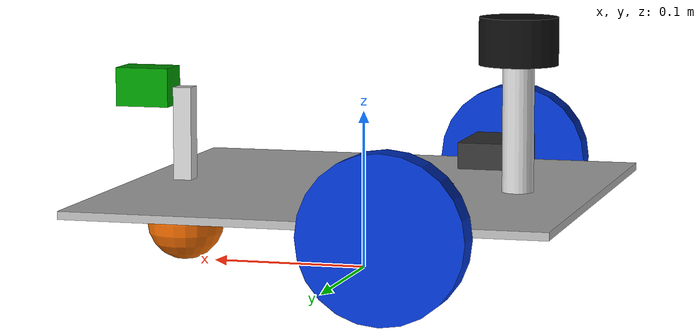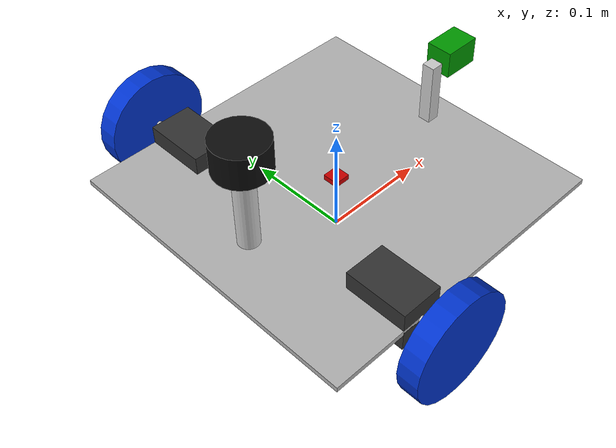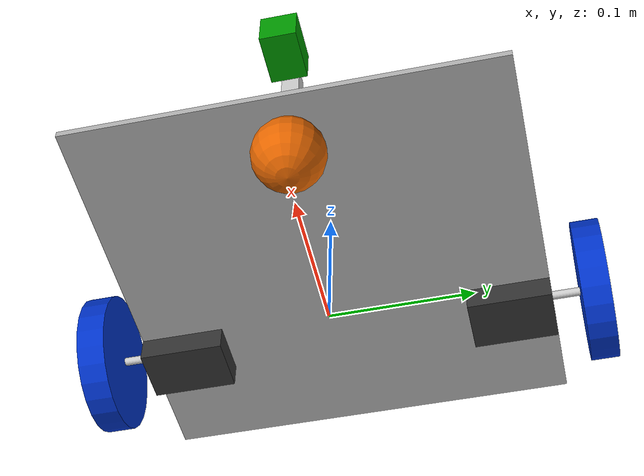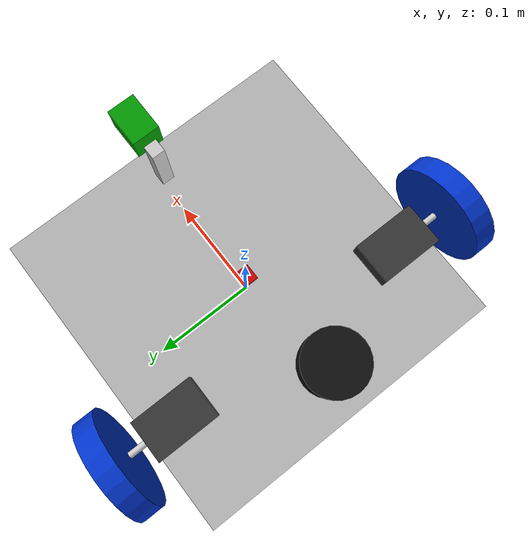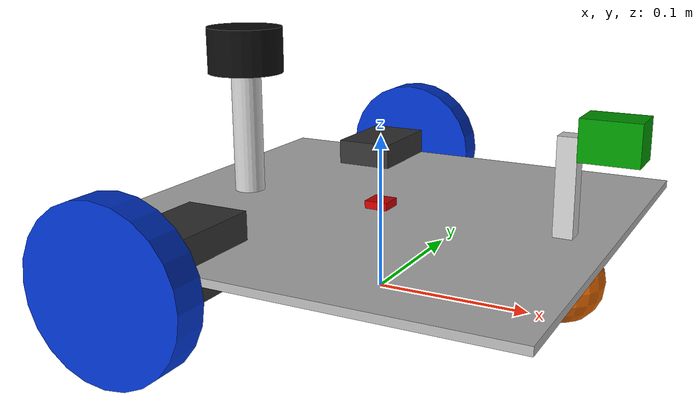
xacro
<?xml version="1.0"?>
<robot name="basic_diff_drive_robot_gazebo" xmlns:xacro="http://www.ros.org/wiki/xacro">

  <xacro:include filename="parts/base.urdf.xacro"/>
  <xacro:include filename="parts/wheel.urdf.xacro"/>
  <xacro:include filename="parts/caster.urdf.xacro"/>
  <xacro:include filename="parts/sensors.urdf.xacro"/>
  <xacro:include filename="parts/plugins.urdf.xacro"/>

  <xacro:drive_wheel_module_gazebo prefix="left" x="-0.06" y="0.12" side="1"/>
  <xacro:drive_wheel_module_gazebo prefix="right" x="-0.06" y="-0.12" side="-1"/>

  <xacro:caster_wheel_gazebo x="0.12" y="0" z="-0.025"/>

  <xacro:arg name="publish_odom_tf" default="true"/>
  <xacro:diff_drive_plugin publish_odom_tf="$(arg publish_odom_tf)"/>

</robot>

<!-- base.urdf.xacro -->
<robot name="base_gazebo_module" xmlns:xacro="http://www.ros.org/wiki/xacro">

  <xacro:property name="PI" value="3.1415926"/>

  <xacro:property name="base_len" value="0.30"/>
  <xacro:property name="base_width" value="0.30"/>
  <xacro:property name="base_height" value="0.005"/>
  <xacro:property name="base_mass" value="1.0"/>
  <xacro:property name="base_z_offset" value="0.05"/>

  <material name="plate_gray"><color rgba="0.7 0.7 0.7 1.0"/></material>
  <material name="motor_black"><color rgba="0.2 0.2 0.2 1.0"/></material>
  <material name="shaft_silver"><color rgba="0.8 0.8 0.8 1.0"/></material>
  <material name="wheel_blue"><color rgba="0.0 0.2 0.8 1.0"/></material>
  <material name="caster_orange"><color rgba="0.9 0.4 0.0 1.0"/></material>
  <material name="lidar_dark"><color rgba="0.05 0.05 0.05 1.0"/></material>
  <material name="imu_red"><color rgba="0.8 0.0 0.0 1.0"/></material>
  <material name="camera_green"><color rgba="0.0 0.6 0.0 1.0"/></material>

  <xacro:macro name="box_inertial" params="mass x y z *origin">
    <inertial>
      <xacro:insert_block name="origin"/>
      <mass value="${mass}"/>
      <inertia
        ixx="${mass * (y*y + z*z) / 12.0}"
        ixy="0.0"
        ixz="0.0"
        iyy="${mass * (x*x + z*z) / 12.0}"
        iyz="0.0"
        izz="${mass * (x*x + y*y) / 12.0}"/>
    </inertial>
  </xacro:macro>

  <xacro:macro name="cylinder_inertial" params="mass radius length *origin">
    <inertial>
      <xacro:insert_block name="origin"/>
      <mass value="${mass}"/>
      <inertia
        ixx="${mass * (3.0 * radius * radius + length * length) / 12.0}"
        ixy="0.0"
        ixz="0.0"
        iyy="${mass * (3.0 * radius * radius + length * length) / 12.0}"
        iyz="0.0"
        izz="${mass * radius * radius / 2.0}"/>
    </inertial>
  </xacro:macro>

  <xacro:macro name="sphere_inertial" params="mass radius *origin">
    <inertial>
      <xacro:insert_block name="origin"/>
      <mass value="${mass}"/>
      <inertia
        ixx="${2.0 * mass * radius * radius / 5.0}"
        ixy="0.0"
        ixz="0.0"
        iyy="${2.0 * mass * radius * radius / 5.0}"
        iyz="0.0"
        izz="${2.0 * mass * radius * radius / 5.0}"/>
    </inertial>
  </xacro:macro>

  <link name="base_footprint"/>

  <joint name="footprint_to_base" type="fixed">
    <parent link="base_footprint"/>
    <child link="base_link"/>
    <origin xyz="0 0 ${base_z_offset}" rpy="0 0 0"/>
  </joint>

  <link name="base_link">
    <visual>
      <geometry>
        <box size="${base_len} ${base_width} ${base_height}"/>
      </geometry>
      <material name="plate_gray"/>
    </visual>

    <collision>
      <geometry>
        <box size="${base_len} ${base_width} ${base_height}"/>
      </geometry>
    </collision>

    <xacro:box_inertial mass="${base_mass}" x="${base_len}" y="${base_width}" z="${base_height}">
      <origin xyz="0 0 0" rpy="0 0 0"/>
    </xacro:box_inertial>
  </link>

  <gazebo reference="base_link">
    <material>Gazebo/Grey</material>
  </gazebo>

</robot>

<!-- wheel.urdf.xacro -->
<robot name="wheel_gazebo_module" xmlns:xacro="http://www.ros.org/wiki/xacro">

  <xacro:property name="motor_l" value="0.06"/>
  <xacro:property name="motor_w" value="0.04"/>
  <xacro:property name="motor_h" value="0.04"/>
  <xacro:property name="motor_mass" value="0.15"/>

  <xacro:property name="wheel_radius" value="0.05"/>
  <xacro:property name="wheel_length" value="0.02"/>
  <xacro:property name="wheel_mass" value="0.12"/>

  <xacro:property name="shaft_radius" value="0.003"/>
  <xacro:property name="shaft_length" value="0.02"/>

  <xacro:macro name="drive_wheel_module_gazebo" params="prefix x y side">

    <link name="${prefix}_motor_link">
      <visual>
        <geometry><box size="${motor_w} ${motor_l} ${motor_h}"/></geometry>
        <material name="motor_black"/>
      </visual>
      <visual>
        <origin xyz="0 ${side * (motor_l / 2.0 + shaft_length / 2.0)} 0" rpy="${PI/2.0} 0 0"/>
        <geometry><cylinder radius="${shaft_radius}" length="${shaft_length}"/></geometry>
        <material name="shaft_silver"/>
      </visual>
      <collision>
        <geometry><box size="${motor_w} ${motor_l} ${motor_h}"/></geometry>
      </collision>
      <xacro:box_inertial mass="${motor_mass}" x="${motor_w}" y="${motor_l}" z="${motor_h}">
        <origin xyz="0 0 0" rpy="0 0 0"/>
      </xacro:box_inertial>
    </link>

    <joint name="${prefix}_motor_joint" type="fixed">
      <parent link="base_link"/>
      <child link="${prefix}_motor_link"/>
      <origin xyz="${x} ${y} 0" rpy="0 0 0"/>
    </joint>

    <link name="${prefix}_wheel_link">
      <visual>
        <origin xyz="0 0 0" rpy="${PI/2.0} 0 0"/>
        <geometry><cylinder radius="${wheel_radius}" length="${wheel_length}"/></geometry>
        <material name="wheel_blue"/>
      </visual>
      <collision>
        <origin xyz="0 0 0" rpy="${PI/2.0} 0 0"/>
        <geometry><cylinder radius="${wheel_radius}" length="${wheel_length}"/></geometry>
      </collision>
      <xacro:cylinder_inertial mass="${wheel_mass}" radius="${wheel_radius}" length="${wheel_length}">
        <origin xyz="0 0 0" rpy="${PI/2.0} 0 0"/>
      </xacro:cylinder_inertial>
    </link>

    <joint name="${prefix}_wheel_joint" type="continuous">
      <parent link="${prefix}_motor_link"/>
      <child link="${prefix}_wheel_link"/>
      <origin xyz="0 ${side * (motor_l / 2.0 + shaft_length + wheel_length / 2.0)} 0" rpy="0 0 0"/>
      <axis xyz="0 1 0"/>
    </joint>

    <gazebo reference="${prefix}_motor_link">
      <material>Gazebo/Black</material>
    </gazebo>

    <gazebo reference="${prefix}_wheel_link">
      <material>Gazebo/Blue</material>
      <mu1>1.0</mu1>
      <mu2>1.0</mu2>
    </gazebo>

  </xacro:macro>

</robot>

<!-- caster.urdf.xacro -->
<robot name="caster_gazebo_module" xmlns:xacro="http://www.ros.org/wiki/xacro">

  <xacro:property name="caster_radius" value="0.025"/>
  <xacro:property name="caster_mass" value="0.05"/>

  <xacro:macro name="caster_wheel_gazebo" params="x y z">

    <link name="caster_link">
      <visual>
        <geometry><sphere radius="${caster_radius}"/></geometry>
        <material name="caster_orange"/>
      </visual>
      <collision>
        <geometry><sphere radius="${caster_radius}"/></geometry>
      </collision>
      <xacro:sphere_inertial mass="${caster_mass}" radius="${caster_radius}">
        <origin xyz="0 0 0" rpy="0 0 0"/>
      </xacro:sphere_inertial>
    </link>

    <joint name="base_to_caster_joint" type="fixed">
      <parent link="base_link"/>
      <child link="caster_link"/>
      <origin xyz="${x} ${y} ${z}" rpy="0 0 0"/>
    </joint>

    <gazebo reference="caster_link">
      <material>Gazebo/Orange</material>
      <mu1>0.1</mu1>
      <mu2>0.1</mu2>
    </gazebo>

  </xacro:macro>

</robot>

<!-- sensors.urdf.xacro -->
<robot name="sensors_gazebo_module" xmlns:xacro="http://www.ros.org/wiki/xacro">
  <xacro:include filename="sensors/lidar.urdf.xacro"/>
  <xacro:include filename="sensors/imu.urdf.xacro"/>
  <xacro:include filename="sensors/camera.urdf.xacro"/>
</robot>

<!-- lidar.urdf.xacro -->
<robot name="lidar_gazebo_module" xmlns:xacro="http://www.ros.org/wiki/xacro">

  <xacro:property name="lidar_mount_radius" value="0.01"/>
  <xacro:property name="lidar_mount_height" value="0.08"/>
  <xacro:property name="lidar_mount_mass" value="0.05"/>

  <xacro:property name="lidar_radius" value="0.025"/>
  <xacro:property name="lidar_height" value="0.03"/>
  <xacro:property name="lidar_mass" value="0.10"/>

  <link name="lidar_mount_link">
    <visual>
      <origin xyz="0 0 ${lidar_mount_height / 2.0}" rpy="0 0 0"/>
      <geometry>
        <cylinder radius="${lidar_mount_radius}" length="${lidar_mount_height}"/>
      </geometry>
      <material name="shaft_silver"/>
    </visual>

    <collision>
      <origin xyz="0 0 ${lidar_mount_height / 2.0}" rpy="0 0 0"/>
      <geometry>
        <cylinder radius="${lidar_mount_radius}" length="${lidar_mount_height}"/>
      </geometry>
    </collision>

    <xacro:cylinder_inertial mass="${lidar_mount_mass}" radius="${lidar_mount_radius}" length="${lidar_mount_height}">
      <origin xyz="0 0 ${lidar_mount_height / 2.0}" rpy="0 0 0"/>
    </xacro:cylinder_inertial>
  </link>

  <joint name="base_to_lidar_mount_joint" type="fixed">
    <parent link="base_link"/>
    <child link="lidar_mount_link"/>
    <origin xyz="-0.10 0 0.0025" rpy="0 0 0"/>
  </joint>

  <link name="lidar_link">
    <visual>
      <origin xyz="0 0 ${lidar_height / 2.0}" rpy="0 0 0"/>
      <geometry>
        <cylinder radius="${lidar_radius}" length="${lidar_height}"/>
      </geometry>
      <material name="lidar_dark"/>
    </visual>

    <collision>
      <origin xyz="0 0 ${lidar_height / 2.0}" rpy="0 0 0"/>
      <geometry>
        <cylinder radius="${lidar_radius}" length="${lidar_height}"/>
      </geometry>
    </collision>

    <xacro:cylinder_inertial mass="${lidar_mass}" radius="${lidar_radius}" length="${lidar_height}">
      <origin xyz="0 0 ${lidar_height / 2.0}" rpy="0 0 0"/>
    </xacro:cylinder_inertial>
  </link>

  <joint name="lidar_mount_to_lidar_joint" type="fixed">
    <parent link="lidar_mount_link"/>
    <child link="lidar_link"/>
    <origin xyz="0 0 ${lidar_mount_height}" rpy="0 0 0"/>
  </joint>

  <gazebo reference="lidar_mount_link">
    <material>Gazebo/Grey</material>
  </gazebo>

  <gazebo reference="lidar_link">
    <material>Gazebo/Black</material>

    <sensor name="lidar_sensor" type="ray">
      <pose>0 0 0.03 0 0 0</pose>
      <visualize>true</visualize>
      <update_rate>10</update_rate>

      <ray>
        <scan>
          <horizontal>
            <samples>720</samples>
            <resolution>1</resolution>
            <min_angle>-3.1415926</min_angle>
            <max_angle>3.1415926</max_angle>
          </horizontal>
        </scan>

        <range>
          <min>0.12</min>
          <max>8.0</max>
          <resolution>0.01</resolution>
        </range>
      </ray>

      <plugin name="gazebo_ros_lidar_controller" filename="libgazebo_ros_ray_sensor.so">
        <ros>
          <remapping>~/out:=/scan</remapping>
        </ros>
        <output_type>sensor_msgs/LaserScan</output_type>
        <frame_name>lidar_link</frame_name>
      </plugin>
    </sensor>
  </gazebo>

</robot>

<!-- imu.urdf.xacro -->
<robot name="imu_gazebo_module" xmlns:xacro="http://www.ros.org/wiki/xacro">

  <xacro:property name="imu_size" value="0.015"/>
  <xacro:property name="imu_mass" value="0.02"/>

  <link name="imu_link">
    <visual>
      <geometry>
        <box size="${imu_size} ${imu_size} 0.005"/>
      </geometry>
      <material name="imu_red"/>
    </visual>

    <collision>
      <geometry>
        <box size="${imu_size} ${imu_size} 0.005"/>
      </geometry>
    </collision>

    <xacro:box_inertial mass="${imu_mass}" x="${imu_size}" y="${imu_size}" z="0.005">
      <origin xyz="0 0 0" rpy="0 0 0"/>
    </xacro:box_inertial>
  </link>

  <joint name="base_to_imu_joint" type="fixed">
    <parent link="base_link"/>
    <child link="imu_link"/>
    <origin xyz="0 0 0.006" rpy="0 0 0"/>
  </joint>

  <gazebo reference="imu_link">
    <material>Gazebo/Red</material>

    <sensor name="imu_sensor" type="imu">
      <always_on>true</always_on>
      <update_rate>50</update_rate>
      <visualize>true</visualize>

      <plugin name="gazebo_ros_imu_controller" filename="libgazebo_ros_imu_sensor.so">
        <ros>
          <remapping>~/out:=/imu</remapping>
        </ros>
        <frame_name>imu_link</frame_name>
      </plugin>
    </sensor>
  </gazebo>

</robot>

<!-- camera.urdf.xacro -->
<robot name="camera_gazebo_module" xmlns:xacro="http://www.ros.org/wiki/xacro">

  <xacro:property name="camera_mount_w" value="0.012"/>
  <xacro:property name="camera_mount_d" value="0.012"/>
  <xacro:property name="camera_mount_h" value="0.06"/>
  <xacro:property name="camera_mount_mass" value="0.04"/>

  <xacro:property name="camera_len" value="0.035"/>
  <xacro:property name="camera_width" value="0.025"/>
  <xacro:property name="camera_height" value="0.025"/>
  <xacro:property name="camera_mass" value="0.03"/>

  <link name="camera_mount_link">
    <visual>
      <origin xyz="0 0 ${camera_mount_h / 2.0}" rpy="0 0 0"/>
      <geometry>
        <box size="${camera_mount_w} ${camera_mount_d} ${camera_mount_h}"/>
      </geometry>
      <material name="shaft_silver"/>
    </visual>

    <collision>
      <origin xyz="0 0 ${camera_mount_h / 2.0}" rpy="0 0 0"/>
      <geometry>
        <box size="${camera_mount_w} ${camera_mount_d} ${camera_mount_h}"/>
      </geometry>
    </collision>

    <xacro:box_inertial mass="${camera_mount_mass}" x="${camera_mount_w}" y="${camera_mount_d}" z="${camera_mount_h}">
      <origin xyz="0 0 ${camera_mount_h / 2.0}" rpy="0 0 0"/>
    </xacro:box_inertial>
  </link>

  <joint name="base_to_camera_mount_joint" type="fixed">
    <parent link="base_link"/>
    <child link="camera_mount_link"/>
    <origin xyz="0.12 0 0.0025" rpy="0 0 0"/>
  </joint>

  <link name="camera_link">
    <visual>
      <geometry>
        <box size="${camera_len} ${camera_width} ${camera_height}"/>
      </geometry>
      <material name="camera_green"/>
    </visual>

    <collision>
      <geometry>
        <box size="${camera_len} ${camera_width} ${camera_height}"/>
      </geometry>
    </collision>

    <xacro:box_inertial mass="${camera_mass}" x="${camera_len}" y="${camera_width}" z="${camera_height}">
      <origin xyz="0 0 0" rpy="0 0 0"/>
    </xacro:box_inertial>
  </link>

  <joint name="camera_mount_to_camera_joint" type="fixed">
    <parent link="camera_mount_link"/>
    <child link="camera_link"/>
    <origin xyz="0.025 0 ${camera_mount_h}" rpy="0 0 0"/>
  </joint>

  <gazebo reference="camera_mount_link">
    <material>Gazebo/Grey</material>
  </gazebo>

  <gazebo reference="camera_link">
    <material>Gazebo/Green</material>

    <sensor name="camera_sensor" type="depth">
      <always_on>true</always_on>
      <update_rate>15</update_rate>
      <visualize>true</visualize>

      <camera>
        <horizontal_fov>1.047</horizontal_fov>
        <image>
          <width>640</width>
          <height>480</height>
          <format>R8G8B8</format>
        </image>
        <clip>
          <near>0.05</near>
          <far>10.0</far>
        </clip>
      </camera>

      <plugin name="gazebo_ros_camera_controller" filename="libgazebo_ros_camera.so">
        <ros>
          <remapping>image_raw:=/camera/image_raw</remapping>
          <remapping>camera_info:=/camera/camera_info</remapping>
          <remapping>depth_image_raw:=/camera/depth/image_raw</remapping>
          <remapping>depth_camera_info:=/camera/depth/camera_info</remapping>
          <remapping>points:=/camera/points</remapping>
        </ros>
        <camera_name>camera</camera_name>
        <frame_name>camera_link</frame_name>
      </plugin>
    </sensor>
  </gazebo>

</robot>
